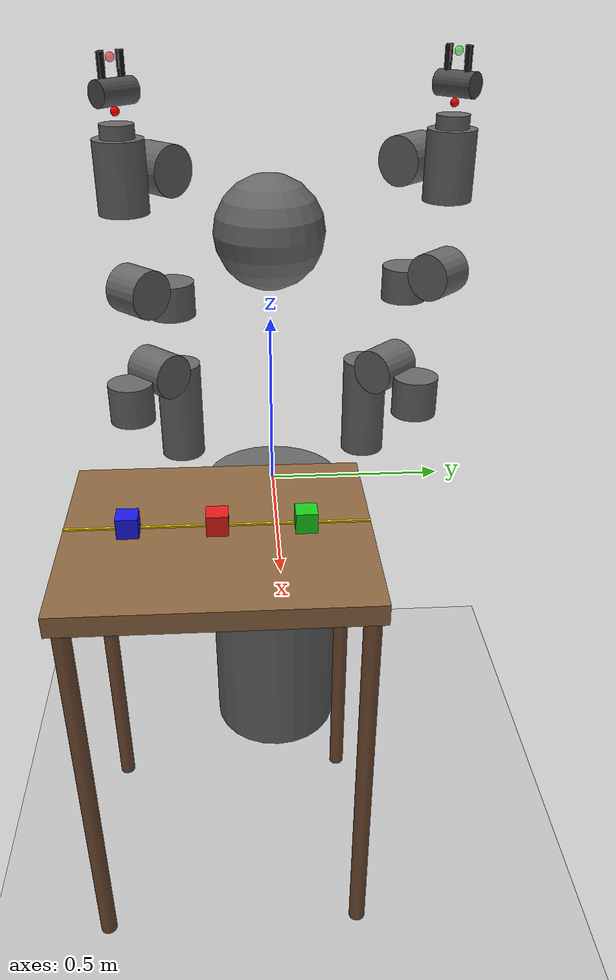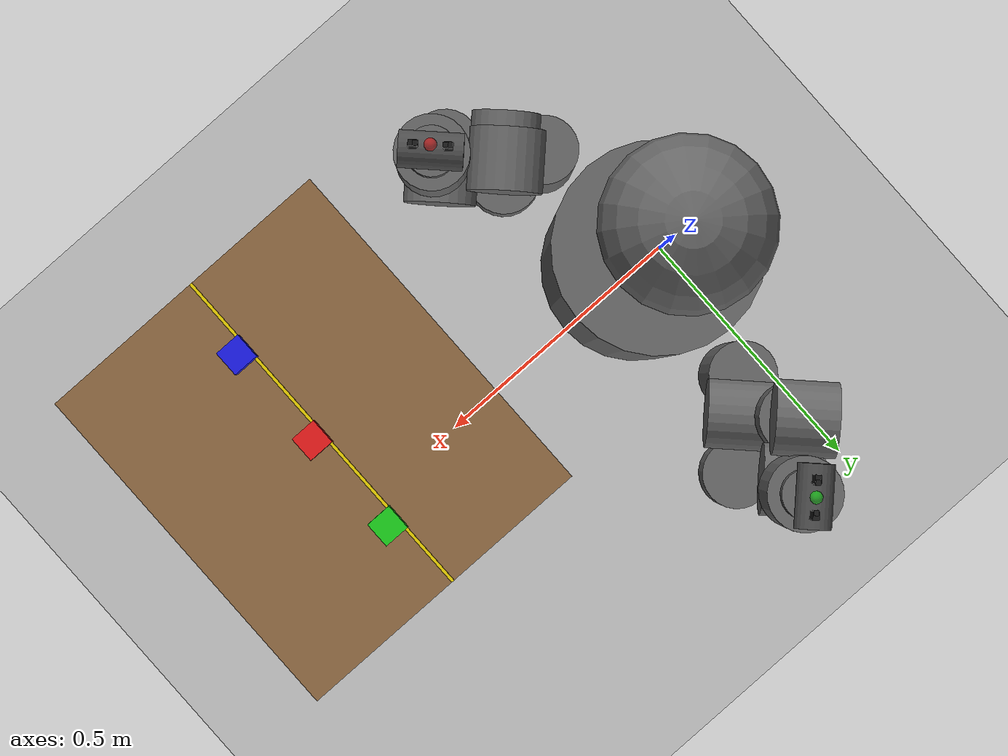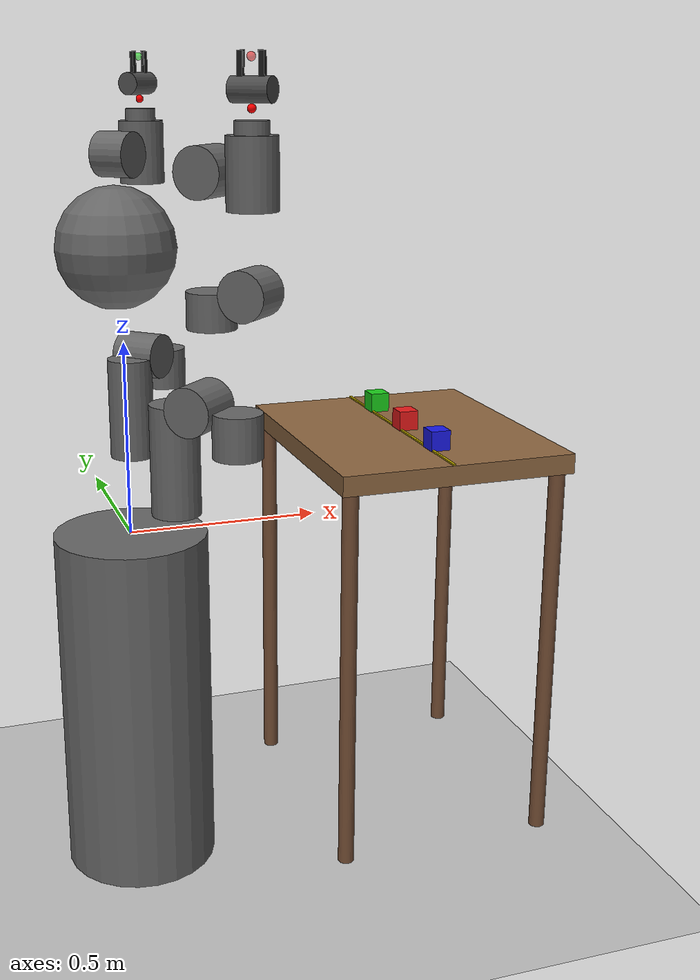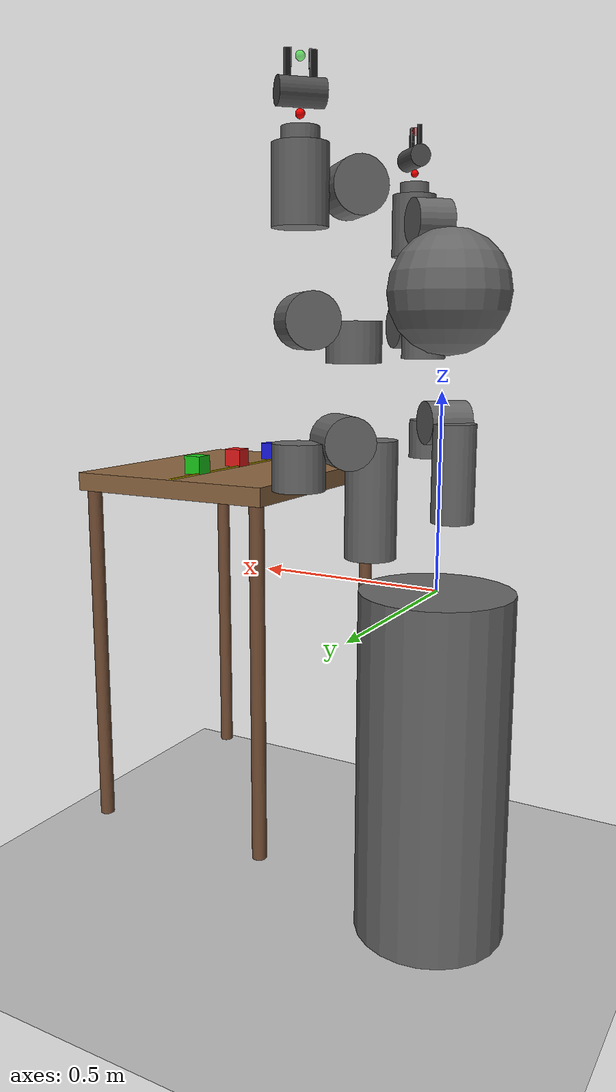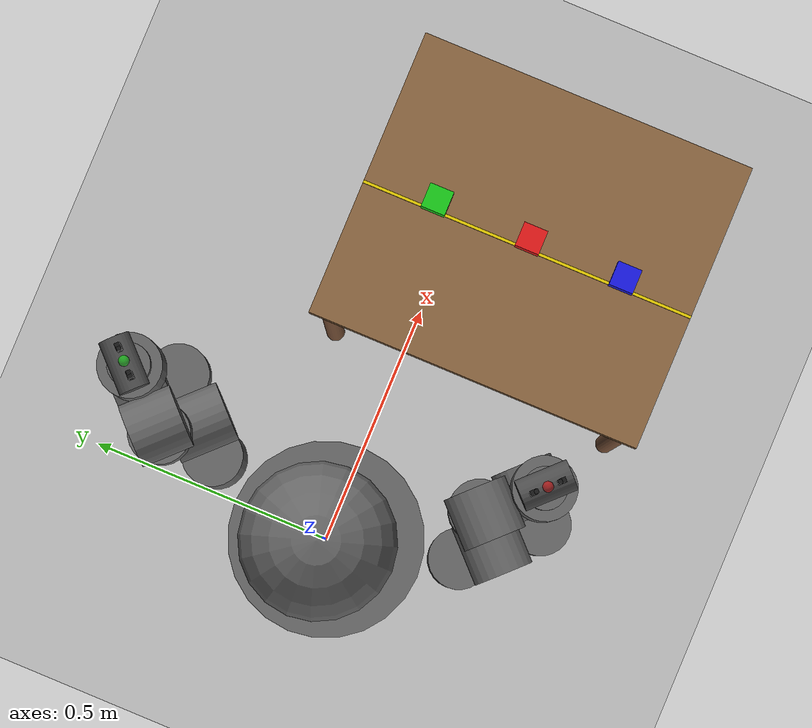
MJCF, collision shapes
<mujoco model="baxter_twoblocks">

  <!-- meshdir points to the shared mesh assets in pi0.5_mujoco -->
  <compiler meshdir="/home/robotlab/Desktop/saniya_ws/pi0.5_mujoco/models/meshes" angle="radian" autolimits="true"/>

  <option timestep="0.002" gravity="0 0 -9.81" integrator="RK4"/>

  <visual>
    <headlight ambient="0.4 0.4 0.4" diffuse="0.8 0.8 0.8" specular="0.1 0.1 0.1"/>
    <global offwidth="1280" offheight="720"/>
  </visual>

  <default>
    <!-- Default joint: light armature for stability -->
    <joint damping="0.7" armature="0.01"/>
    <!-- Visual geoms: no collision -->
    <default class="visual">
      <geom contype="0" conaffinity="0"/>
    </default>
    <default class="collision">
      <geom contype="2" conaffinity="5" rgba="0.4 0.4 0.4 0"/>
    </default>
    <default class="lower_col">
      <geom contype="2" conaffinity="5" rgba="0.4 0.4 0.4 0"/>
    </default>
    <default class="finger_col">
      <geom contype="2" conaffinity="5" rgba="0.1 0.1 0.1 0" friction="0.8 0.1 0.1"/>
    </default>
  </default>

  <!-- ================================================================
    ASSETS — STL/OBJ meshes + gripper materials
  ================================================================ -->
  <asset>
    <!-- Baxter arm meshes -->
    <mesh name="torso_mesh"    file="torso/base_link.STL"         scale="1 1 1"/>
    <mesh name="pedestal_mesh" file="base/PEDESTAL.STL"           scale="1 1 1"/>
    <mesh name="head_mesh"     file="head/H0.STL"                 scale="1 1 1"/>
    <mesh name="S0"            file="upper_shoulder/S0.STL"       scale="1 1 1"/>
    <mesh name="S1"            file="lower_shoulder/S1.STL"       scale="1 1 1"/>
    <mesh name="E0"            file="upper_elbow/E0.STL"          scale="1 1 1"/>
    <mesh name="E1"            file="lower_elbow/E1.STL"          scale="1 1 1"/>
    <mesh name="W0"            file="upper_forearm/W0.STL"        scale="1 1 1"/>
    <mesh name="W1"            file="lower_forearm/W1.STL"        scale="1 1 1"/>
    <mesh name="W2"            file="wrist/W2.STL"                scale="1 1 1"/>

    <!-- Rethink parallel-jaw gripper meshes -->
    <mesh name="standard_narrow"        file="rethink_gripper/standard_narrow.stl"/>
    <mesh name="half_round_tip"         file="rethink_gripper/half_round_tip.stl"/>
    <mesh name="electric_gripper_base_0" file="rethink_gripper/electric_gripper_base_0.obj"/>
    <mesh name="electric_gripper_base_1" file="rethink_gripper/electric_gripper_base_1.obj"/>
    <mesh name="connector_plate"        file="rethink_gripper/connector_plate.obj"/>

    <!-- Gripper materials -->
    <material name="gripper_mat_dark"   specular="0.5" shininess="0.25" rgba="0.001651 0.001651 0.001651 1"/>
    <material name="gripper_mat_red"    specular="0.5" shininess="0.25" rgba="0.64 0.00 0.00 1"/>
    <material name="gripper_mat_grey"   specular="0.5" shininess="0.25" rgba="0.64 0.64 0.64 1"/>
    <material name="finger_mat"         specular="0.5" shininess="0.25" rgba="0.00 0.00 0.00 1"/>
  </asset>

  <!-- ================================================================
    WORLDBODY
  ================================================================ -->
  <worldbody>

    <body name="scene_camera_body" pos="1.0 -1.2 1.2">
      <camera name="scene_camera" xyaxes="0.832 0.555 0  -0.400 0.600 0.693" fovy="55"/>
    </body>
    <!-- Top-down camera for VLM planning: near side (x=0.60) → LEFT, far side (x=0.75) → RIGHT -->
    <body name="vlm_camera_body" pos="0.675 -0.15 1.05">
      <camera name="vlm_camera" xyaxes="1 0 0  0 1 0" fovy="40"/>
    </body>

    <!-- Lighting -->
    <light pos="0 0 4"   dir="0 0 -1"    diffuse="0.8 0.8 0.8" specular="0.3 0.3 0.3" castshadow="true"/>
    <light pos="2 2 3"   dir="-1 -1 -1"  diffuse="0.5 0.5 0.5" castshadow="false"/>

    <!-- Floor -->
    <geom name="floor" type="plane" size="5 5 0.1" rgba="0.75 0.75 0.75 1"
          pos="0 0 -0.93" contype="1" conaffinity="4" friction="0.8 0.1 0.1"/>

    <body name="table" pos="0.70 -0.15 0.235">
      <geom name="table_top"  type="box" size="0.30 0.35 0.025"
            rgba="0.55 0.40 0.25 1" contype="1" conaffinity="4"
            friction="0.8 0.1 0.1"/>
      <geom name="table_leg1" type="cylinder" size="0.02 0.49"
            pos=" 0.27  0.32 -0.515" rgba="0.45 0.30 0.20 1"
            contype="0" conaffinity="0"/>
      <geom name="table_leg2" type="cylinder" size="0.02 0.49"
            pos="-0.27  0.32 -0.515" rgba="0.45 0.30 0.20 1"
            contype="0" conaffinity="0"/>
      <geom name="table_leg3" type="cylinder" size="0.02 0.49"
            pos=" 0.27 -0.32 -0.515" rgba="0.45 0.30 0.20 1"
            contype="0" conaffinity="0"/>
      <geom name="table_leg4" type="cylinder" size="0.02 0.49"
            pos="-0.27 -0.32 -0.515" rgba="0.45 0.30 0.20 1"
            contype="0" conaffinity="0"/>
      <!-- Yellow dividing line (world x=0.68 = relative x=−0.02) -->
      <geom name="dividing_line" type="box" size="0.003 0.35 0.002"
            pos="-0.02 0.0 0.027" rgba="0.9 0.8 0.0 1"
            contype="0" conaffinity="0"/>
    </body>

    <!-- ── RED BLOCK ─────────────────────────────────────────────────────
         5 cm red cube. y=-0.15
    ──────────────────────────────────────────────────────────────────── -->
    <body name="target_cube_red" pos="0.70 -0.15 0.285">
      <joint name="cube_red_free" type="free"/>
      <inertial pos="0 0 0" mass="0.050" diaginertia="2e-5 2e-5 2e-5"/>
      <geom name="cube_red" type="box" size="0.025 0.025 0.025"
            rgba="0.9 0.1 0.1 1" contype="4" conaffinity="5"
            friction="0.6 0.1 0.1"/>
    </body>

    <!-- ── BLUE BLOCK ────────────────────────────────────────────────────
         5 cm blue cube. y=-0.35
    ──────────────────────────────────────────────────────────────────── -->
    <body name="target_cube_blue" pos="0.70 -0.35 0.285">
      <joint name="cube_blue_free" type="free"/>
      <inertial pos="0 0 0" mass="0.050" diaginertia="2e-5 2e-5 2e-5"/>
      <geom name="cube_blue" type="box" size="0.025 0.025 0.025"
            rgba="0.1 0.1 0.9 1" contype="4" conaffinity="5"
            friction="0.6 0.1 0.1"/>
    </body>

    <!-- ── GREEN BLOCK ───────────────────────────────────────────────────
         5 cm green cube. y=+0.05
    ──────────────────────────────────────────────────────────────────── -->
    <body name="target_cube_green" pos="0.70 0.05 0.285">
      <joint name="cube_green_free" type="free"/>
      <inertial pos="0 0 0" mass="0.050" diaginertia="2e-5 2e-5 2e-5"/>
      <geom name="cube_green" type="box" size="0.025 0.025 0.025"
            rgba="0.1 0.8 0.1 1" contype="4" conaffinity="5"
            friction="0.6 0.1 0.1"/>
    </body>

    <!-- ── BASE / TORSO ─────────────────────────────────────────── -->
    <body name="base" pos="0 0 0">
      <inertial pos="0 0 0" mass="0.001" diaginertia="1e-6 1e-6 1e-6"/>

      <body name="torso" pos="0 0 0">
        <inertial pos="0 0 0" mass="35.336455"
                  fullinertia="1.849155 1.662671 0.802239 -0.000354 -0.154188 0.003292"/>
        <geom class="visual"    name="torso_v" type="mesh" mesh="torso_mesh" rgba="0.5 0.1 0.1 1"/>
        <geom class="collision" name="torso_c" type="box"  size="0.15 0.15 0.5" pos="0 0 0.35"
              contype="0" conaffinity="0"/>

        <body name="pedestal" pos="0 0 0">
          <inertial pos="0 0 0" mass="60.86397744"
                    fullinertia="5.0635929 6.08689388 4.96191932 0.00103417 0.80199628 0.00105311"/>
          <geom class="visual"    name="pedestal_v" type="mesh" mesh="pedestal_mesh" rgba="0.2 0.2 0.2 1"/>
          <geom class="collision" name="pedestal_c" type="cylinder" size="0.20 0.465" pos="0 0 -0.465"/>
        </body>

        <!-- ── HEAD ─────────────────────────────────────────────── -->
        <body name="head" pos="0.06 0 0.686">
          <inertial pos="0 0 0" mass="0.547767"
                    fullinertia="0.004641 0.003295 0.003415 0.000159 0.000242 -0.001324"/>
          <geom class="visual"    name="head_v" type="mesh" mesh="head_mesh" rgba="0.2 0.2 0.2 1"/>
          <geom class="collision" name="head_c" type="sphere" size="0.15" pos="-0.07 0 0.05"/>
          <joint name="head_pan" type="hinge" axis="0 0 1" range="-1.5708 1.5708"/>

          <body name="head_camera_body" pos="0.12839 0 0.06368" euler="1.75057 0 1.5708">
            <inertial pos="0 0 0" mass="0.0001" diaginertia="1e-8 1e-8 1e-8"/>
            <camera name="head_camera" pos="0 0 0" fovy="60"/>
          </body>
        </body>

        <!-- ============================================================
          RIGHT ARM
        ============================================================ -->
        <body name="right_arm_mount" pos="0.024645 -0.219645 0.118588" euler="0 0 -0.7854">
          <inertial pos="0 0 0" mass="0.0001" diaginertia="1e-8 1e-8 1e-8"/>

          <body name="right_upper_shoulder" pos="0.055695 0 0.011038">
            <inertial pos="0.01783 0.00086 0.19127" mass="5.70044"
                      fullinertia="0.04709102262 0.03766976455 0.03595988478
                                   0.00012787556  0.00614870039  0.00078086899"/>
            <geom class="visual"    name="rus_v" type="mesh"     mesh="S0"    rgba="0.5 0.1 0.1 1"/>
            <geom class="collision" name="rus_c" type="cylinder" size="0.06 0.1361" pos="0 0 0.1361"/>
            <joint name="right_s0" type="hinge" axis="0 0 1" range="-1.7017 1.7017"/>

            <body name="right_lower_shoulder" pos="0.069 0 0.27035" euler="-1.5708 0 0">
              <inertial pos="0.06845 0.00269 -0.00529" mass="3.22698"
                        fullinertia="0.01175209419 0.0278859752 0.02078749298
                                     -0.00030096398 0.00207675762 -0.00018821993"/>
              <geom class="visual"    name="rls_v" type="mesh"     mesh="S1"  rgba="0.5 0.1 0.1 1"/>
              <geom class="collision" name="rls_c" type="cylinder" size="0.06 0.06"/>
              <joint name="right_s1" type="hinge" axis="0 0 1" range="-2.147 1.047"/>

              <body name="right_upper_elbow" pos="0.102 0 0" euler="1.5708 0 1.5708">
                <inertial pos="-0.00276 0.00132 0.18086" mass="4.31272"
                          fullinertia="0.02661733557 0.02844355207 0.01248008322
                                       0.00029270634  0.00392189887  0.0010838933"/>
                <geom class="visual"    name="rue_v" type="mesh"     mesh="E0"  rgba="0.5 0.1 0.1 1"/>
                <geom class="collision" name="rue_c" type="cylinder" size="0.06 0.0535" pos="0 0 -0.0535"/>
                <joint name="right_e0" type="hinge" axis="0 0 1" range="-3.0542 3.0542"/>

                <body name="right_lower_elbow" pos="0.069 0 0.26242" euler="-1.5708 -1.5708 0">
                  <inertial pos="0.02611 0.00159 -0.01117" mass="2.07206"
                            fullinertia="0.00711582686 0.01318227876 0.00926852064
                                         0.00036036173  0.0007459496  -0.00019663418"/>
                  <geom class="visual"    name="rle_v" type="mesh"     mesh="E1"  rgba="0.5 0.1 0.1 1"/>
                  <geom class="lower_col" name="rle_c" type="cylinder" size="0.06 0.05"/>
                  <joint name="right_e1" type="hinge" axis="0 0 1" range="-0.05 2.618"/>

                  <body name="right_upper_forearm" pos="0.10359 0 0" euler="1.5708 0 1.5708">
                    <inertial pos="-0.00168 0.0046 0.13952" mass="2.24665"
                              fullinertia="0.01667742825 0.01675457264 0.0037463115
                                           0.00018403705  0.00018657629 -0.00064732352"/>
                    <geom class="visual"    name="ruf_v" type="mesh"     mesh="W0"  rgba="0.5 0.1 0.1 1"/>
                    <geom class="lower_col" name="ruf_c" type="cylinder" size="0.06 0.044" pos="0 0 -0.044"/>
                    <joint name="right_w0" type="hinge" axis="0 0 1" range="-3.059 3.059"/>

                    <body name="right_lower_forearm" pos="0.01 0 0.2707" euler="-1.5708 -1.5708 0">
                      <inertial pos="0.06041 0.00697 0.006" mass="1.60979"
                                fullinertia="0.00387607152 0.00700537914 0.0055275524
                                             -0.00044384784 -0.00021115038  0.00015348067"/>
                      <geom class="visual"    name="rlf_v" type="mesh"     mesh="W1"  rgba="0.5 0.1 0.1 1"/>
                      <geom class="lower_col" name="rlf_c" type="cylinder" size="0.06 0.05"/>
                      <joint name="right_w1" type="hinge" axis="0 0 1" range="-1.5708 2.094"/>

                      <body name="right_wrist" pos="0.115975 0 0" euler="1.5708 0 1.5708">
                        <inertial pos="0.00198 0.00125 0.01855" mass="0.35093"
                                  fullinertia="0.00025289155 0.0002688601 0.0003074118
                                               0.00000575311 -0.00000159345 -0.00000519818"/>
                        <geom class="visual"    name="rwr_v" type="mesh"     mesh="W2"  rgba="0.1 0.1 0.1 1"/>
                        <geom class="lower_col" name="rwr_c" type="cylinder" size="0.06 0.0825"/>
                        <joint name="right_w2" type="hinge" axis="0 0 1" range="-3.059 3.059"/>

                        <body name="right_hand" pos="0 0 0.11355">
                          <inertial pos="0.01093 0.00042 -0.01532" mass="0.19125"
                                    fullinertia="0.00017588 0.00021166377 0.00023745397
                                                 0.00000147073  0.0000243633  0.00000172689"/>
                          <geom class="lower_col" name="rhand_c" type="cylinder"
                                size="0.04 0.0232" pos="0 0 -0.0232"/>

                          <body name="right_hand_camera_body"
                                pos="0.06 0 0.04" euler="0 1.5708 0">
                            <inertial pos="0 0 0" mass="0.0001" diaginertia="1e-8 1e-8 1e-8"/>
                            <camera name="right_hand_camera" fovy="90"/>
                          </body>

                          <!-- ── RIGHT GRIPPER (Rethink Electric Parallel Jaw) ──────────── -->
                          <body name="right_gripper" pos="0 0 0.025">
                            <inertial pos="0 0 0" quat="-0.5 0.5 0.5 0.5" mass="0.3"
                                      diaginertia="3e-08 2e-08 2e-08"/>
                            <site name="right_ft_frame" pos="0 0 0" size="0.01" rgba="1 0 0 1"
                                  type="sphere" group="1"/>
                            <!-- Visual meshes -->
                            <geom class="visual" name="rgrip_connector_v"
                                  type="mesh" mesh="connector_plate" material="gripper_mat_dark"
                                  pos="0 0 0.0018" quat="0.7071068 0 0 0.7071068"/>
                            <geom class="visual" name="rgrip_base0_v"
                                  type="mesh" mesh="electric_gripper_base_0" material="gripper_mat_grey"
                                  pos="0 0 0.0194" quat="0.7071068 0 0 0.7071068"/>
                            <geom class="visual" name="rgrip_base1_v"
                                  type="mesh" mesh="electric_gripper_base_1" material="gripper_mat_red"
                                  pos="0 0 0.0194" quat="0.7071068 0 0 0.7071068"/>
                            <!-- Gripper body collision (cylinder, arm-like: contype=2, conaffinity=4) -->
                            <geom name="rgrip_base_c" type="cylinder" size="0.029 0.05"
                                  pos="0.004 0.0 0.04" quat="0 0 0.707107 0.707107"
                                  contype="2" conaffinity="5" rgba="0.3 0.3 0.3 0"/>

                            <!-- End-effector frame -->
                            <body name="right_gripper_eef" pos="0 0 0.109" quat="0.707105 0 0 -0.707105">
                              <site name="right_grip_site" pos="0 0 0" size="0.01" rgba="1 0 0 0.5"
                                    type="sphere" group="1"/>
                            </body>

                            <!-- Left finger (positive-Y side) -->
                            <body name="right_l_finger" pos="0 0.01 0.0444">
                              <inertial pos="0 0 0" quat="0 0 0 -1" mass="0.02"
                                        diaginertia="0.01 0.01 0.01"/>
                              <joint name="right_l_finger_joint" pos="0 0 0" axis="0 1 0"
                                     type="slide" range="-0.0115 0.020833"
                                     damping="100" armature="1.0" frictionloss="1.0"/>
                              <!-- Visual -->
                              <geom class="visual" name="right_l_finger_v"
                                    type="mesh" mesh="standard_narrow" material="finger_mat"
                                    quat="0 0 0 -1"/>
                              <!-- Collision geoms: finger_col class (contype=2, conaffinity=5) -->
                              <geom class="finger_col" name="right_l_finger_g0"
                                    type="box" size="0.005 0.00675 0.0375"
                                    pos="0 0.01725 0.04" quat="0 0 0 -1"/>
                              <geom class="finger_col" name="right_l_finger_g1"
                                    type="box" size="0.005 0.025 0.0085"
                                    pos="-0.005 -0.003 0.0083" quat="0 0 0 -1"/>
                              <body name="right_l_finger_tip" pos="0 0.01725 0.075">
                                <inertial pos="0 0 0" quat="0 0 0 1" mass="0.01"
                                          diaginertia="0.01 0.01 0.01"/>
                                <geom class="visual" name="right_l_fingertip_v"
                                      type="mesh" mesh="half_round_tip" material="finger_mat"
                                      quat="0 0 0 1"/>
                                <geom class="finger_col" name="right_l_fingertip_g0"
                                      type="box" size="0.004 0.004 0.0185"
                                      pos="0 -0.0045 -0.015" quat="0 0 0 -1"/>
                                <geom class="finger_col" name="right_l_fingerpad_g0"
                                      type="box" size="0.0035 0.004 0.0165"
                                      pos="0 -0.0047 -0.017"/>
                              </body>
                            </body><!-- /right_l_finger -->

                            <!-- Right finger (negative-Y side) -->
                            <body name="right_r_finger" pos="0 -0.01 0.0444">
                              <inertial pos="0 0 0" mass="0.02" diaginertia="0.01 0.01 0.01"/>
                              <joint name="right_r_finger_joint" pos="0 0 0" axis="0 1 0"
                                     type="slide" range="-0.020833 0.0115"
                                     damping="100" armature="1.0" frictionloss="1.0"/>
                              <!-- Visual -->
                              <geom class="visual" name="right_r_finger_v"
                                    type="mesh" mesh="standard_narrow" material="finger_mat"/>
                              <!-- Collision geoms -->
                              <geom class="finger_col" name="right_r_finger_g0"
                                    type="box" size="0.005 0.00675 0.0375"
                                    pos="0 -0.01725 0.04"/>
                              <geom class="finger_col" name="right_r_finger_g1"
                                    type="box" size="0.005 0.025 0.0085"
                                    pos="0.005 0.003 0.0083"/>
                              <body name="right_r_finger_tip" pos="0 -0.01725 0.075">
                                <inertial pos="0 0 0" mass="0.01" diaginertia="0.01 0.01 0.01"/>
                                <geom class="visual" name="right_r_fingertip_v"
                                      type="mesh" mesh="half_round_tip" material="finger_mat"/>
                                <geom class="finger_col" name="right_r_fingertip_g0"
                                      type="box" size="0.004 0.004 0.0185"
                                      pos="0 0.0045 -0.015"/>
                                <geom class="finger_col" name="right_r_fingerpad_g0"
                                      type="box" size="0.0035 0.004 0.0165"
                                      pos="0 0.0047 -0.017"/>
                              </body>
                            </body><!-- /right_r_finger -->

                          </body><!-- /right_gripper -->
                        </body><!-- /right_hand -->
                      </body><!-- /right_wrist -->
                    </body><!-- /right_lower_forearm -->
                  </body><!-- /right_upper_forearm -->
                </body><!-- /right_lower_elbow -->
              </body><!-- /right_upper_elbow -->
            </body><!-- /right_lower_shoulder -->
          </body><!-- /right_upper_shoulder -->
        </body><!-- /right_arm_mount -->

        <!-- ============================================================
          LEFT ARM
        ============================================================ -->
        <body name="left_arm_mount" pos="0.024645 0.219645 0.118588" euler="0 0 0.7854">
          <inertial pos="0 0 0" mass="0.0001" diaginertia="1e-8 1e-8 1e-8"/>

          <body name="left_upper_shoulder" pos="0.055695 0 0.011038">
            <inertial pos="0.01783 0.00086 0.19127" mass="5.70044"
                      fullinertia="0.04709102262 0.03766976455 0.03595988478
                                   0.00012787556  0.00614870039  0.00078086899"/>
            <geom class="visual"    name="lus_v" type="mesh"     mesh="S0"    rgba="0.5 0.1 0.1 1"/>
            <geom class="collision" name="lus_c" type="cylinder" size="0.06 0.1361" pos="0 0 0.1361"/>
            <joint name="left_s0" type="hinge" axis="0 0 1" range="-1.7017 1.7017"/>

            <body name="left_lower_shoulder" pos="0.069 0 0.27035" euler="-1.5708 0 0">
              <inertial pos="0.06845 0.00269 -0.00529" mass="3.22698"
                        fullinertia="0.01175209419 0.0278859752 0.02078749298
                                     -0.00030096398 0.00207675762 -0.00018821993"/>
              <geom class="visual"    name="lls_v" type="mesh"     mesh="S1"  rgba="0.5 0.1 0.1 1"/>
              <geom class="collision" name="lls_c" type="cylinder" size="0.06 0.06"/>
              <joint name="left_s1" type="hinge" axis="0 0 1" range="-2.147 1.047"/>

              <body name="left_upper_elbow" pos="0.102 0 0" euler="1.5708 0 1.5708">
                <inertial pos="-0.00276 0.00132 0.18086" mass="4.31272"
                          fullinertia="0.02661733557 0.02844355207 0.01248008322
                                       0.00029270634  0.00392189887  0.0010838933"/>
                <geom class="visual"    name="lue_v" type="mesh"     mesh="E0"  rgba="0.5 0.1 0.1 1"/>
                <geom class="collision" name="lue_c" type="cylinder" size="0.06 0.0535" pos="0 0 -0.0535"/>
                <joint name="left_e0" type="hinge" axis="0 0 1" range="-3.0542 3.0542"/>

                <body name="left_lower_elbow" pos="0.069 0 0.26242" euler="-1.5708 -1.5708 0">
                  <inertial pos="0.02611 0.00159 -0.01117" mass="2.07206"
                            fullinertia="0.00711582686 0.01318227876 0.00926852064
                                         0.00036036173  0.0007459496  -0.00019663418"/>
                  <geom class="visual"    name="lle_v" type="mesh"     mesh="E1"  rgba="0.5 0.1 0.1 1"/>
                  <geom class="collision" name="lle_c" type="cylinder" size="0.06 0.05"/>
                  <joint name="left_e1" type="hinge" axis="0 0 1" range="-0.05 2.618"/>

                  <body name="left_upper_forearm" pos="0.10359 0 0" euler="1.5708 0 1.5708">
                    <inertial pos="-0.00168 0.0046 0.13952" mass="2.24665"
                              fullinertia="0.01667742825 0.01675457264 0.0037463115
                                           0.00018403705  0.00018657629 -0.00064732352"/>
                    <geom class="visual"    name="luf_v" type="mesh"     mesh="W0"  rgba="0.5 0.1 0.1 1"/>
                    <geom class="collision" name="luf_c" type="cylinder" size="0.06 0.044" pos="0 0 -0.044"/>
                    <joint name="left_w0" type="hinge" axis="0 0 1" range="-3.059 3.059"/>

                    <body name="left_lower_forearm" pos="0.01 0 0.2707" euler="-1.5708 -1.5708 0">
                      <inertial pos="0.06041 0.00697 0.006" mass="1.60979"
                                fullinertia="0.00387607152 0.00700537914 0.0055275524
                                             -0.00044384784 -0.00021115038  0.00015348067"/>
                      <geom class="visual"    name="llf_v" type="mesh"     mesh="W1"  rgba="0.5 0.1 0.1 1"/>
                      <geom class="collision" name="llf_c" type="cylinder" size="0.06 0.05"/>
                      <joint name="left_w1" type="hinge" axis="0 0 1" range="-1.5708 2.094"/>

                      <body name="left_wrist" pos="0.115975 0 0" euler="1.5708 0 1.5708">
                        <inertial pos="0.00198 0.00125 0.01855" mass="0.35093"
                                  fullinertia="0.00025289155 0.0002688601 0.0003074118
                                               0.00000575311 -0.00000159345 -0.00000519818"/>
                        <geom class="visual"    name="lwr_v" type="mesh"     mesh="W2"  rgba="0.1 0.1 0.1 1"/>
                        <geom class="collision" name="lwr_c" type="cylinder" size="0.06 0.0825"/>
                        <joint name="left_w2" type="hinge" axis="0 0 1" range="-3.059 3.059"/>

                        <body name="left_hand" pos="0 0 0.11355">
                          <inertial pos="0.01093 0.00042 -0.01532" mass="0.19125"
                                    fullinertia="0.00017588 0.00021166377 0.00023745397
                                                 0.00000147073  0.0000243633  0.00000172689"/>
                          <geom class="collision" name="lhand_c" type="cylinder"
                                size="0.04 0.0232" pos="0 0 -0.0232"/>

                          <body name="left_hand_camera_body"
                                pos="0.03825 0.012 0.015355" euler="0 0 -1.5708">
                            <inertial pos="0 0 0" mass="0.0001" diaginertia="1e-8 1e-8 1e-8"/>
                            <camera name="left_hand_camera" fovy="90"/>
                          </body>

                          <!-- ── LEFT GRIPPER (Rethink Electric Parallel Jaw) ───────────── -->
                          <body name="left_gripper" pos="0 0 0.025">
                            <inertial pos="0 0 0" quat="-0.5 0.5 0.5 0.5" mass="0.3"
                                      diaginertia="3e-08 2e-08 2e-08"/>
                            <site name="left_ft_frame" pos="0 0 0" size="0.01" rgba="1 0 0 1"
                                  type="sphere" group="1"/>
                            <!-- Visual meshes -->
                            <geom class="visual" name="lgrip_connector_v"
                                  type="mesh" mesh="connector_plate" material="gripper_mat_dark"
                                  pos="0 0 0.0018" quat="0.7071068 0 0 0.7071068"/>
                            <geom class="visual" name="lgrip_base0_v"
                                  type="mesh" mesh="electric_gripper_base_0" material="gripper_mat_grey"
                                  pos="0 0 0.0194" quat="0.7071068 0 0 0.7071068"/>
                            <geom class="visual" name="lgrip_base1_v"
                                  type="mesh" mesh="electric_gripper_base_1" material="gripper_mat_red"
                                  pos="0 0 0.0194" quat="0.7071068 0 0 0.7071068"/>
                            <!-- Gripper body collision -->
                            <geom name="lgrip_base_c" type="cylinder" size="0.029 0.05"
                                  pos="0.004 0.0 0.04" quat="0 0 0.707107 0.707107"
                                  contype="2" conaffinity="4" rgba="0.3 0.3 0.3 0"/>

                            <!-- End-effector frame -->
                            <body name="left_gripper_eef" pos="0 0 0.109" quat="0.707105 0 0 -0.707105">
                              <site name="left_grip_site" pos="0 0 0" size="0.01" rgba="0 1 0 0.5"
                                    type="sphere" group="1"/>
                            </body>

                            <!-- Left finger (positive-Y side) -->
                            <body name="left_l_finger" pos="0 0.01 0.0444">
                              <inertial pos="0 0 0" quat="0 0 0 -1" mass="0.02"
                                        diaginertia="0.01 0.01 0.01"/>
                              <joint name="left_l_finger_joint" pos="0 0 0" axis="0 1 0"
                                     type="slide" range="-0.0115 0.020833"
                                     damping="100" armature="1.0" frictionloss="1.0"/>
                              <geom class="visual" name="left_l_finger_v"
                                    type="mesh" mesh="standard_narrow" material="finger_mat"
                                    quat="0 0 0 -1"/>
                              <geom class="finger_col" name="left_l_finger_g0"
                                    type="box" size="0.005 0.00675 0.0375"
                                    pos="0 0.01725 0.04" quat="0 0 0 -1"/>
                              <geom class="finger_col" name="left_l_finger_g1"
                                    type="box" size="0.005 0.025 0.0085"
                                    pos="-0.005 -0.003 0.0083" quat="0 0 0 -1"/>
                              <body name="left_l_finger_tip" pos="0 0.01725 0.075">
                                <inertial pos="0 0 0" quat="0 0 0 1" mass="0.01"
                                          diaginertia="0.01 0.01 0.01"/>
                                <geom class="visual" name="left_l_fingertip_v"
                                      type="mesh" mesh="half_round_tip" material="finger_mat"
                                      quat="0 0 0 1"/>
                                <geom class="finger_col" name="left_l_fingertip_g0"
                                      type="box" size="0.004 0.004 0.0185"
                                      pos="0 -0.0045 -0.015" quat="0 0 0 -1"/>
                                <geom class="finger_col" name="left_l_fingerpad_g0"
                                      type="box" size="0.0035 0.004 0.0165"
                                      pos="0 -0.0047 -0.017"/>
                              </body>
                            </body><!-- /left_l_finger -->

                            <!-- Right finger (negative-Y side) -->
                            <body name="left_r_finger" pos="0 -0.01 0.0444">
                              <inertial pos="0 0 0" mass="0.02" diaginertia="0.01 0.01 0.01"/>
                              <joint name="left_r_finger_joint" pos="0 0 0" axis="0 1 0"
                                     type="slide" range="-0.020833 0.0115"
                                     damping="100" armature="1.0" frictionloss="1.0"/>
                              <geom class="visual" name="left_r_finger_v"
                                    type="mesh" mesh="standard_narrow" material="finger_mat"/>
                              <geom class="finger_col" name="left_r_finger_g0"
                                    type="box" size="0.005 0.00675 0.0375"
                                    pos="0 -0.01725 0.04"/>
                              <geom class="finger_col" name="left_r_finger_g1"
                                    type="box" size="0.005 0.025 0.0085"
                                    pos="0.005 0.003 0.0083"/>
                              <body name="left_r_finger_tip" pos="0 -0.01725 0.075">
                                <inertial pos="0 0 0" mass="0.01" diaginertia="0.01 0.01 0.01"/>
                                <geom class="visual" name="left_r_fingertip_v"
                                      type="mesh" mesh="half_round_tip" material="finger_mat"/>
                                <geom class="finger_col" name="left_r_fingertip_g0"
                                      type="box" size="0.004 0.004 0.0185"
                                      pos="0 0.0045 -0.015"/>
                                <geom class="finger_col" name="left_r_fingerpad_g0"
                                      type="box" size="0.0035 0.004 0.0165"
                                      pos="0 0.0047 -0.017"/>
                              </body>
                            </body><!-- /left_r_finger -->

                          </body><!-- /left_gripper -->
                        </body><!-- /left_hand -->
                      </body><!-- /left_wrist -->
                    </body><!-- /left_lower_forearm -->
                  </body><!-- /left_upper_forearm -->
                </body><!-- /left_lower_elbow -->
              </body><!-- /left_upper_elbow -->
            </body><!-- /left_lower_shoulder -->
          </body><!-- /left_upper_shoulder -->
        </body><!-- /left_arm_mount -->

      </body><!-- /torso -->
    </body><!-- /base -->
  </worldbody>

  <actuator>
    <!-- Head -->
    <velocity name="head_pan_v"  joint="head_pan"  kv="5"  ctrlrange="-1.0 1.0"/>

    <!-- Right arm -->
    <velocity name="right_s0_v"  joint="right_s0"  kv="30" ctrlrange="-3.0 3.0"/>
    <velocity name="right_s1_v"  joint="right_s1"  kv="30" ctrlrange="-3.0 3.0"/>
    <velocity name="right_e0_v"  joint="right_e0"  kv="30" ctrlrange="-3.0 3.0"/>
    <velocity name="right_e1_v"  joint="right_e1"  kv="30" ctrlrange="-3.0 3.0"/>
    <velocity name="right_w0_v"  joint="right_w0"  kv="10" ctrlrange="-4.0 4.0"/>
    <velocity name="right_w1_v"  joint="right_w1"  kv="10" ctrlrange="-4.0 4.0"/>
    <velocity name="right_w2_v"  joint="right_w2"  kv="10" ctrlrange="-4.0 4.0"/>

    <!-- Right gripper fingers (position-controlled) -->
    <position name="right_gripper_l" joint="right_l_finger_joint"
              kp="1000" forcelimited="true" forcerange="-20 20"
              ctrllimited="true" ctrlrange="-0.0115 0.020833"/>
    <position name="right_gripper_r" joint="right_r_finger_joint"
              kp="1000" forcelimited="true" forcerange="-20 20"
              ctrllimited="true" ctrlrange="-0.020833 0.0115"/>

    <!-- Left arm -->
    <velocity name="left_s0_v"   joint="left_s0"   kv="30" ctrlrange="-3.0 3.0"/>
    <velocity name="left_s1_v"   joint="left_s1"   kv="30" ctrlrange="-3.0 3.0"/>
    <velocity name="left_e0_v"   joint="left_e0"   kv="30" ctrlrange="-3.0 3.0"/>
    <velocity name="left_e1_v"   joint="left_e1"   kv="30" ctrlrange="-3.0 3.0"/>
    <velocity name="left_w0_v"   joint="left_w0"   kv="10" ctrlrange="-4.0 4.0"/>
    <velocity name="left_w1_v"   joint="left_w1"   kv="10" ctrlrange="-4.0 4.0"/>
    <velocity name="left_w2_v"   joint="left_w2"   kv="10" ctrlrange="-4.0 4.0"/>

    <!-- Left gripper fingers (position-controlled) -->
    <position name="left_gripper_l" joint="left_l_finger_joint"
              kp="1000" forcelimited="true" forcerange="-20 20"
              ctrllimited="true" ctrlrange="-0.0115 0.020833"/>
    <position name="left_gripper_r" joint="left_r_finger_joint"
              kp="1000" forcelimited="true" forcerange="-20 20"
              ctrllimited="true" ctrlrange="-0.020833 0.0115"/>
  </actuator>

  <keyframe>
    <key name="home"
         qpos="0.70 -0.15 0.285 1 0 0 0
               0.70 -0.35 0.285 1 0 0 0
               0.70  0.05 0.285 1 0 0 0
               0
               0 -0.9599 0 2.0 0 0.7854 0   0.020833 -0.020833
               0 -0.9599 0 2.0 0 0.7854 0   0.020833 -0.020833"/>
  </keyframe>

  <!-- ================================================================
    SENSORS — force/torque at each wrist
  ================================================================ -->
  <sensor>
    <force  name="right_force_ee"  site="right_ft_frame"/>
    <torque name="right_torque_ee" site="right_ft_frame"/>
    <force  name="left_force_ee"   site="left_ft_frame"/>
    <torque name="left_torque_ee"  site="left_ft_frame"/>
  </sensor>

</mujoco>
